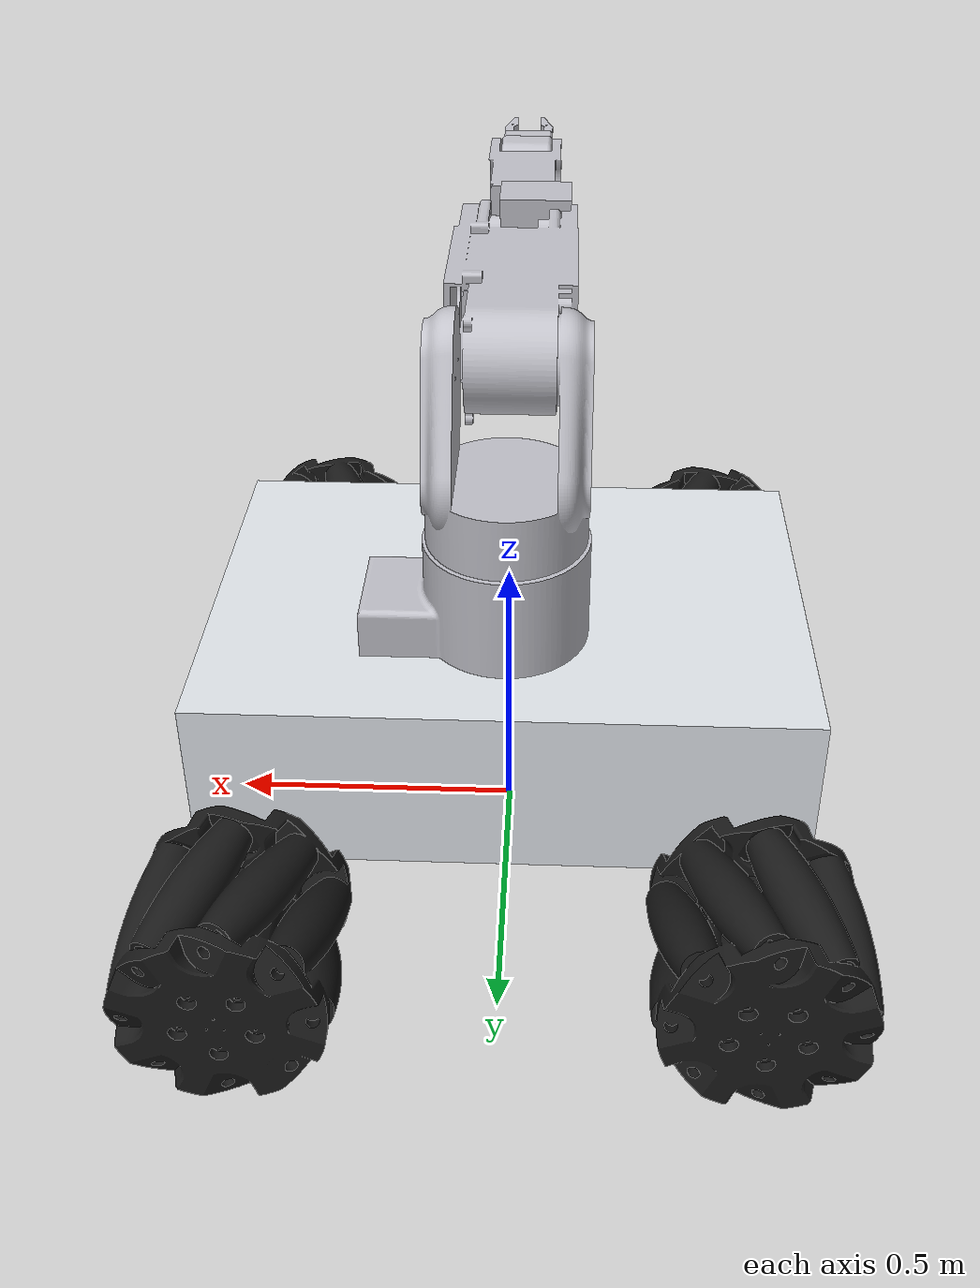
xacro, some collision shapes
<?xml version="1.0"?>
<robot xmlns:xacro="http://www.ros.org/wiki/xacro"
       xmlns:gz="http://gazebosim.org/schema"
       name="mobil_manipulator">

  <!-- Normal Gazebo/LLM profili yalnız native Gazebo arayüzünü kullanır.
       Reaktör 180'e ait özel kamera ancak o eski launch açıkça isterse eklenir. -->
  <xacro:arg name="enable_game_camera" default="false"/>

  <!-- ================= MECANUM BODY ================= -->

  <xacro:property name="body_length" value="1.0"/>
  <xacro:property name="body_width"  value="0.7"/>
  <xacro:property name="body_height" value="0.3"/>
  <xacro:property name="wheel_radius" value="0.1625"/>
  <xacro:property name="wheel_width"  value="0.09"/>
  <xacro:property name="wheel_scale" value="0.01"/>

  <xacro:property name="wheel_offset_x" value="${body_length/2 - 0.10}"/>
  <xacro:property name="wheel_offset_y" value="${body_width/2 + wheel_width +0.1}"/>

  <xacro:property name="body_mass"  value="80.0"/>
  <xacro:property name="wheel_mass" value="1.0"/>
  <xacro:property name="body_z" value="${wheel_radius + body_height/2}"/>

  <xacro:property name="wheel_mesh_right" value="file://$(find mecanum_robot_description)/meshes/mecanum_wheel_right.stl"/>
  <xacro:property name="wheel_mesh_left" value="file://$(find mecanum_robot_description)/meshes/mecanum_wheel_left.stl"/>
<!-- ================= S ROBOT ARM V2 ENTEGRASYONU ================= -->

  <xacro:include filename="$(find robot_arm_description)/urdf/robot_arm.xacro"/>

  <joint name="chassis_to_arm_joint" type="fixed">
    <parent link="base_link"/>
    <child link="arm_base_link"/>
    <origin xyz="0 0 ${body_z + (body_height/2)}" rpy="0 0 0"/>
  </joint>
  <!-- BASE -->
<link name="base_footprint"/>
  <joint name="base_joint" type="fixed">
    <parent link="base_footprint"/>
    <child link="base_link"/>
  </joint>

  <link name="base_link">
    <inertial>
      <origin xyz="0 0 -0.5" rpy="0 0 0"/>
      <mass value="${body_mass}"/>
      <inertia
        ixx="${(1.0/12.0) * body_mass * (body_width*body_width + body_height*body_height)}"
        iyy="${(1.0/12.0) * body_mass * (body_length*body_length + body_height*body_height)}"
        izz="${(1.0/12.0) * body_mass * (body_length*body_length + body_width*body_width)}"
        ixy="0.0" ixz="0.0" iyz="0.0"/>
    </inertial>

    <visual>
      <origin xyz="0 0 ${body_z}" rpy="0 0 0"/>
      <geometry>
        <box size="${body_length} ${body_width} ${body_height}"/>
      </geometry>
      <material name="clean_white">
        <color rgba="0.88 0.90 0.92 1"/>
      </material>
    </visual>

    <collision>
      <origin xyz="0 0 ${body_z}" rpy="0 0 0"/>
      <geometry>
        <box size="${body_length} ${body_width} ${body_height}"/>
      </geometry>
    </collision>
  </link>

  <!-- ================= MECANUM WHEELS ================= -->

  <xacro:macro name="mecanum_wheel" params="name parent x y z mesh fdir_x fdir_y">

    <link name="${name}">
      <inertial>
        <mass value="${wheel_mass}"/>
        <origin xyz="0 0 0" rpy="0 0 0"/>
        <inertia
          ixx="${(wheel_mass/12.0) * (3*wheel_radius*wheel_radius + wheel_width*wheel_width)}"
          iyy="${(wheel_mass/2.0) * wheel_radius*wheel_radius}"
          izz="${(wheel_mass/12.0) * (3*wheel_radius*wheel_radius + wheel_width*wheel_width)}"
          ixy="0" ixz="0" iyz="0"/>
      </inertial>
      <visual>
        <geometry>
          <mesh filename="${mesh}" scale="${wheel_scale} ${wheel_scale} ${wheel_scale}"/>
        </geometry>
        <material name="black"><color rgba="0.1 0.1 0.1 1"/></material>
      </visual>
      <collision>
        <origin xyz="0 0 0" rpy="0 0 0"/>
        <geometry>
          <sphere radius="${wheel_radius}"/>
        </geometry>
      </collision>
    </link>

    <joint name="${name}_joint" type="continuous">
      <parent link="${parent}"/>
      <child link="${name}"/>
      <origin xyz="${x} ${y} ${z}" rpy="0 0 0"/>
      <axis xyz="0 1 0"/>
    </joint>

    <gazebo reference="${name}">
      <collision>
        <surface>
          <friction>
            <ode>
              <mu>7.0</mu>
              <mu2>0.0</mu2>
              <fdir1 gz:expressed_in="base_footprint">${fdir_x} ${fdir_y} 0</fdir1>
            </ode>
          </friction>
        </surface>
      </collision>
    </gazebo>
  </xacro:macro>

  <!-- FL ve RR: fdir1 = (1, -1, 0)  |  FR ve RL: fdir1 = (1, 1, 0) -->

  <xacro:mecanum_wheel name="wheel_fl" parent="base_link"
    x="${wheel_offset_x}" y="${wheel_offset_y}" z="${wheel_radius}"
    mesh="${wheel_mesh_left}" fdir_x="1" fdir_y="-1"/>

  <xacro:mecanum_wheel name="wheel_fr" parent="base_link"
    x="${wheel_offset_x}" y="-${wheel_offset_y}" z="${wheel_radius}"
    mesh="${wheel_mesh_right}" fdir_x="1" fdir_y="1"/>

  <xacro:mecanum_wheel name="wheel_rl" parent="base_link"
    x="-${wheel_offset_x}" y="${wheel_offset_y}" z="${wheel_radius}"
    mesh="${wheel_mesh_right}" fdir_x="1" fdir_y="1"/>

  <xacro:mecanum_wheel name="wheel_rr" parent="base_link"
    x="-${wheel_offset_x}" y="-${wheel_offset_y}" z="${wheel_radius}"
    mesh="${wheel_mesh_left}" fdir_x="1" fdir_y="-1"/>

  <!-- ================= LIDAR ================= -->

  <xacro:property name="lidar_z" value="${body_z + body_height/2 + 0.02}"/>

  <joint name="lidar_joint" type="fixed">
    <parent link="base_link"/>
    <child link="lidar_link"/>
    <!-- X=0.45 (Aracın burnunda), Y=0.0 (Ortalanmış), Z=lidar_z (Aracın üstünde) -->
    <origin xyz="0.45 0.0 ${lidar_z}" rpy="0 0 0"/>
  </joint>

  <link name="lidar_link">
    <inertial>
      <mass value="0.2"/>
      <origin xyz="0 0 0" rpy="0 0 0"/>
      <inertia ixx="0.0001" iyy="0.0001" izz="0.0001" ixy="0" ixz="0" iyz="0"/>
    </inertial>
    <!-- Sensor-only link: hiding the old grey puck cleans the manipulator's
         working area without changing lidar data. -->
  </link>

  <xacro:if value="$(arg enable_game_camera)">
  <!-- ================= FESTIVAL 3D GAME CAMERA ================= -->

  <!-- The small nose camera remains part of the robot silhouette, but the
       festival game uses the shared chase camera below. -->
  <joint name="driver_camera_joint" type="fixed">
    <parent link="base_link"/>
    <child link="driver_camera_link"/>
    <origin xyz="0.43 0 ${body_z + 0.47}" rpy="0 0 0"/>
  </joint>
  <link name="driver_camera_link">
    <!-- Sensor frame retained for compatibility; the obsolete black nose
         camera housing is not part of the shared-camera game silhouette. -->
  </link>

  <joint name="arm_operator_camera_joint" type="fixed">
    <parent link="base_link"/>
    <child link="arm_operator_camera_link"/>
    <origin xyz="-2.68 -1.55 ${body_z + 1.65}" rpy="0 0.38 0.523599"/>
  </joint>
  <link name="arm_operator_camera_link"/>
  </xacro:if>

<gazebo>
  <plugin filename="libgz-sim-mecanum-drive-system.so"
          name="gz::sim::systems::MecanumDrive">
    <front_left_joint>wheel_fl_joint</front_left_joint>
    <front_right_joint>wheel_fr_joint</front_right_joint>
    <back_left_joint>wheel_rl_joint</back_left_joint>
    <back_right_joint>wheel_rr_joint</back_right_joint>
    <wheel_separation>1.08</wheel_separation>
    <wheelbase>0.80</wheelbase>
    <wheel_radius>0.1625</wheel_radius>

    <topic>/cmd_vel</topic>

    <odom_publish_frequency>30</odom_publish_frequency>
    <frame_id>odom</frame_id>
    <child_frame_id>base_footprint</child_frame_id>
    <odom_topic>/odom</odom_topic>
    <tf_topic>/tf</tf_topic>
  </plugin>
</gazebo>

<!-- Pearl-white visual finish for the mobile platform.  This section changes
     rendering only; the chassis geometry, mass and collision stay untouched. -->
<gazebo reference="base_link">
  <visual>
    <material>
      <ambient>0.46 0.48 0.50 1</ambient>
      <diffuse>0.88 0.90 0.92 1</diffuse>
      <specular>0.72 0.75 0.78 1</specular>
      <pbr><metal><metalness>0.28</metalness><roughness>0.34</roughness></metal></pbr>
    </material>
  </visual>
  <xacro:if value="$(arg enable_game_camera)">
    <self_collide>true</self_collide>
  </xacro:if>
  <xacro:unless value="$(arg enable_game_camera)">
    <self_collide>false</self_collide>
  </xacro:unless>
</gazebo>

<!-- ROS 2 Control Gazebo Plugin genel-->

<gazebo reference="lidar_link">
  <sensor name="lidar_sensor" type="gpu_lidar">
    <topic>/scan</topic>
    <update_rate>10</update_rate>
    <gz_frame_id>lidar_link</gz_frame_id>
    <pose>0 0 0 0 0 0</pose>
    <visualize>false</visualize>
    <!-- Nav2 and SLAM consume this scan in the native Gazebo arena.  Gazebo's
         hidden sensor render target remains active without adding an RViz or
         Reactor camera window. -->
    <always_on>true</always_on>
    <ray>
      <scan>
        <horizontal>
          <samples>360</samples>
          <resolution>1.0</resolution>
            <min_angle>-2.09</min_angle>
            <max_angle>2.09</max_angle>
        </horizontal>
      </scan>
      <range>
        <min>0.15</min>
        <max>12.0</max>
        <resolution>0.01</resolution>
      </range>
      <noise>
        <type>gaussian</type>
        <mean>0.0</mean>
        <stddev>0.01</stddev>
      </noise>
    </ray>
  </sensor>
</gazebo>

<xacro:if value="$(arg enable_game_camera)">
<gazebo reference="arm_operator_camera_link">
  <sensor name="shared_game_camera_sensor" type="camera">
    <topic>/reactor_180/game_camera</topic>
    <update_rate>20</update_rate>
    <camera>
      <horizontal_fov>1.95</horizontal_fov>
      <image>
        <width>1600</width>
        <height>900</height>
        <format>R8G8B8</format>
        <anti_aliasing>4</anti_aliasing>
      </image>
      <clip><near>0.12</near><far>28.0</far></clip>
    </camera>
    <always_on>true</always_on>
    <visualize>false</visualize>
  </sensor>
</gazebo>
</xacro:if>

</robot>

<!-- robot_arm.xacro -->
<robot name="robot_arm" xmlns:xacro="http://www.ros.org/wiki/xacro">

<xacro:arg name="use_ros2_control" default="true" />
<xacro:arg name="use_native_control" default="false" />
<xacro:arg name="enable_game_assets" default="false" />
<xacro:arg name="standalone_arm" default="false" />
<!-- Mobile arena only: spawn directly on the deterministic table-clearing
     MoveIt branch. Standalone/upstream profiles retain their ready pose. -->
<xacro:arg name="mobile_case_initial" default="false" />
<xacro:include filename="$(find robot_arm_description)/urdf/materials.xacro" />
<xacro:include filename="$(find robot_arm_description)/urdf/robot_arm.ros2control" />
<xacro:include filename="$(find robot_arm_description)/urdf/robot_arm.gazebo" />
<xacro:if value="$(arg standalone_arm)">
  <link name="world"/>
  <joint name="world_to_arm_base" type="fixed">
    <parent link="world"/>
    <child link="arm_base_link"/>
    <origin xyz="0 0 0" rpy="0 0 0"/>
  </joint>
</xacro:if>

<link name="arm_base_link">
  <inertial>
    <origin xyz="0.014712625665330324 0.1104030365171965 0.045126245432456004" rpy="0 0 0"/>
    <mass value="1.346391"/>
    <inertia ixx="0.015764883" iyy="0.019490568" izz="0.022143950" ixy="-0.000000000" iyz="-0.000000000" ixz="0.000497100"/>
  </inertial>
  <visual>
    <origin xyz="0 0 0" rpy="0 0 0"/>
    <geometry>
      <mesh filename="file://$(find robot_arm_description)/meshes/base_link.stl" scale="0.001 0.001 0.001"/>
    </geometry>
    <material name="silver"/>
  </visual>
  <collision>
    <origin xyz="0 0.11 0.09" rpy="0 0 0"/>
    <geometry><cylinder radius="0.16" length="0.18"/></geometry>
  </collision>
</link>

<link name="shoulder_link_v2_1">
  <inertial>
    <origin xyz="-0.00035045456964973747 -0.013538062073570417 0.10281772471825718" rpy="0 0 0"/>
    <mass value="1.306891"/>
    <inertia ixx="0.016597600" iyy="0.019874750" izz="0.013551083" ixy="-0.000025850" iyz="0.002596482" ixz="0.000078850"/>
  </inertial>
  <visual>
    <origin xyz="0.0 -0.110403 -0.184597" rpy="0 0 0"/>
    <geometry>
      <mesh filename="file://$(find robot_arm_description)/meshes/shoulder_link_v2_1.stl" scale="0.001 0.001 0.001"/>
    </geometry>
    <material name="silver"/>
  </visual>
  <collision>
    <origin xyz="-0.047 -0.035 0.135" rpy="0 0 0"/>
    <geometry><box size="0.22 0.20 0.24"/></geometry>
  </collision>
</link>

<link name="upper_arm_link_v2_1">
  <inertial>
    <origin xyz="0.0860771295035334 -0.19746164423610849 -1.0453582749314627e-05" rpy="0 0 0"/>
    <mass value="0.888269"/>
    <inertia ixx="0.030127082" iyy="0.005919182" izz="0.031455283" ixy="0.001406950" iyz="-0.000000968" ixz="0.000000918"/>
  </inertial>
  <visual>
    <origin xyz="0.095 -0.040403 -0.459597" rpy="0 0 0"/>
    <geometry>
      <mesh filename="file://$(find robot_arm_description)/meshes/upper_arm_link_v2_1.stl" scale="0.001 0.001 0.001"/>
    </geometry>
    <material name="silver"/>
  </visual>
  <collision>
    <origin xyz="0.020 -0.262 0" rpy="0 0 0"/>
    <geometry><box size="0.13 0.45 0.13"/></geometry>
  </collision>
</link>

<link name="elbow_link_v2_1">
  <inertial>
    <origin xyz="0.052902702338458216 -0.025659794753081833 -0.00021904281386853075" rpy="0 0 0"/>
    <mass value="0.119430"/>
    <inertia ixx="0.000407768" iyy="0.000297132" izz="0.000394317" ixy="0.000000367" iyz="-0.000000918" ixz="0.000000000"/>
  </inertial>
  <visual>
    <origin xyz="0.054 0.484597 -0.459597" rpy="0 0 0"/>
    <geometry>
      <mesh filename="file://$(find robot_arm_description)/meshes/elbow_link_v2_1.stl" scale="0.001 0.001 0.001"/>
    </geometry>
    <material name="silver"/>
  </visual>
  <collision>
    <origin xyz="0.026 -0.041 0" rpy="0 0 0"/>
    <geometry><box size="0.13 0.10 0.13"/></geometry>
  </collision>
</link>

<link name="lower_link_v2_1">
  <inertial>
    <origin xyz="3.585542470080057e-05 -0.14132389998535622 -4.115182214436963e-07" rpy="0 0 0"/>
    <mass value="0.230197"/>
    <inertia ixx="0.002054683" iyy="0.000702300" izz="0.002163800" ixy="-0.000011800" iyz="-0.000000018" ixz="-0.000000000"/>
  </inertial>
  <visual>
    <origin xyz="0.001 0.567597 -0.459597" rpy="0 0 0"/>
    <geometry>
      <mesh filename="file://$(find robot_arm_description)/meshes/lower_link_v2_1.stl" scale="0.001 0.001 0.001"/>
    </geometry>
    <material name="silver"/>
  </visual>
  <collision>
    <origin xyz="-0.026 -0.145 0" rpy="0 0 0"/>
    <geometry><box size="0.11 0.24 0.11"/></geometry>
  </collision>
</link>

<link name="wrist_link_v1_1">
  <inertial>
    <origin xyz="0.05107201270944397 -0.011906080047413892 0.00027679513001566125" rpy="0 0 0"/>
    <mass value="0.056296"/>
    <inertia ixx="0.000073483" iyy="0.000101617" izz="0.000108383" ixy="0.000000100" iyz="0.000000150" ixz="-0.000000000"/>
  </inertial>
  <visual>
    <origin xyz="0.053 0.858597 -0.459597" rpy="0 0 0"/>
    <geometry>
      <mesh filename="file://$(find robot_arm_description)/meshes/wrist_link_v1_1.stl" scale="0.001 0.001 0.001"/>
    </geometry>
    <material name="silver"/>
  </visual>
  <collision>
    <origin xyz="0.025 -0.025 0" rpy="0 0 0"/>
    <geometry><box size="0.11 0.08 0.09"/></geometry>
  </collision>
</link>

<link name="gripper_link_v2_1">
  <inertial>
    <origin xyz="-0.0010660299218875268 -0.04308680250375296 0.0009958827106185675" rpy="0 0 0"/>
    <mass value="0.024621"/>
    <inertia ixx="0.000017783" iyy="0.000027882" izz="0.000033467" ixy="0.000000018" iyz="0.000000133" ixz="-0.000000000"/>
  </inertial>
  <visual>
    <origin xyz="0.0018 0.909535 -0.460781" rpy="0 0 0"/>
    <geometry>
      <mesh filename="file://$(find robot_arm_description)/meshes/gripper_link_v2_1.stl" scale="0.001 0.001 0.001"/>
    </geometry>
    <material name="silver"/>
  </visual>
  <collision>
    <origin xyz="0 -0.0375 0.0045" rpy="0 0 0"/>
    <geometry>
      <box size="0.100 0.075 0.045"/>
    </geometry>
  </collision>
</link>

<link name="grasp_frame"/>
<joint name="gripper_to_grasp_frame" type="fixed">
  <parent link="gripper_link_v2_1"/>
  <child link="grasp_frame"/>
  <origin xyz="0 -0.124 0.005" rpy="0 0 0"/>
</joint>

<xacro:if value="$(arg enable_game_assets)">
<link name="held_core_visual_link">
  <inertial>
    <mass value="0.01"/>
    <origin xyz="0 0 0" rpy="0 0 0"/>
    <inertia ixx="0.00001" iyy="0.00001" izz="0.00001"
             ixy="0" ixz="0" iyz="0"/>
  </inertial>
  <visual name="held_energy_cell">
    <origin xyz="0 0 0" rpy="0 0 0"/>
    <geometry><box size="0.05 0.12 0.07"/></geometry>
    <material name="held_core_blue">
      <color rgba="0.04 0.78 1.0 1.0"/>
    </material>
  </visual>
</link>
<joint name="held_core_visibility_joint" type="prismatic">
  <parent link="grasp_frame"/>
  <child link="held_core_visual_link"/>
  <origin xyz="0 0 -1.5" rpy="0 0 0"/>
  <axis xyz="0 0 1"/>
  <limit lower="0.0" upper="1.6" effort="4" velocity="20.0"/>
  <dynamics damping="0.1" friction="0.0"/>
</joint>
</xacro:if>

<link name="jaw_one_v1_1">
  <inertial>
    <origin xyz="-0.01527629607958246 -0.036016115673927374 0.008044608205367287" rpy="0 0 0"/>
    <mass value="0.008454"/>
    <inertia ixx="0.000007550" iyy="0.000001732" izz="0.000007283" ixy="0.000000018" iyz="-0.000000367" ixz="0.000000200"/>
  </inertial>
  <visual>
    <origin xyz="-0.0482 0.997104 -0.458817" rpy="0 0 0"/>
    <geometry>
      <mesh filename="file://$(find robot_arm_description)/meshes/jaw_one_v1_1.stl" scale="0.001 0.001 0.001"/>
    </geometry>
    <material name="silver"/>
  </visual>
  <collision name="jaw_one_inner_contact_collision">
    <origin xyz="-0.023 -0.043 0.0065" rpy="0 0 0"/>
    <geometry><box size="0.006 0.070 0.042"/></geometry>
  </collision>
</link>

<link name="jaw_two_v1_1">
  <inertial>
    <origin xyz="0.015274559603405395 -0.03618933785615064 0.004635449770394873" rpy="0 0 0"/>
    <mass value="0.008454"/>
    <inertia ixx="0.000007550" iyy="0.000001867" izz="0.000007168" ixy="0.000000000" iyz="0.000000918" ixz="0.000000200"/>
  </inertial>
  <visual>
    <origin xyz="0.0518 0.997104 -0.458817" rpy="0 0 0"/>
    <geometry>
      <mesh filename="file://$(find robot_arm_description)/meshes/jaw_two_v1_1.stl" scale="0.001 0.001 0.001"/>
    </geometry>
    <material name="silver"/>
  </visual>
  <collision name="jaw_two_inner_contact_collision">
    <origin xyz="0.023 -0.043 0.0065" rpy="0 0 0"/>
    <geometry><box size="0.006 0.070 0.042"/></geometry>
  </collision>
</link>

<joint name="revolute_1" type="revolute">
  <origin xyz="0.0 0.110403 0.184597" rpy="0 0 0"/>
  <parent link="arm_base_link"/>
  <child link="shoulder_link_v2_1"/>
  <axis xyz="0.0 -0.0 1.0"/>
  <xacro:if value="$(arg use_native_control)">
    <limit lower="1.45" upper="1.69" effort="100" velocity="1.2"/>
  </xacro:if>
  <xacro:unless value="$(arg use_native_control)">
    <limit lower="-3.14159" upper="3.14159" effort="100" velocity="3.0"/>
  </xacro:unless>
  <dynamics damping="0.5" friction="0.0"/>
</joint>

<xacro:if value="$(arg use_native_control)">
  <joint name="revolute_2" type="continuous">
    <origin xyz="-0.095 -0.07 0.275" rpy="0 0 0"/>
    <parent link="shoulder_link_v2_1"/>
    <child link="upper_arm_link_v2_1"/>
    <axis xyz="1.0 -0.0 0.0"/>
    <!-- Festival control is continuous: contact with the chassis, arm or
         floor is the physical motion stop. -->
    <limit effort="180" velocity="1.4"/>
    <dynamics damping="0.5" friction="0.0"/>
  </joint>

  <joint name="revolute_3" type="continuous">
    <origin xyz="0.041 -0.525 0.0" rpy="0 0 0"/>
    <parent link="upper_arm_link_v2_1"/>
    <child link="elbow_link_v2_1"/>
    <axis xyz="1.0 -0.0 0.0"/>
    <limit effort="100" velocity="1.4"/>
    <dynamics damping="0.5" friction="0.0"/>
  </joint>
</xacro:if>

<xacro:unless value="$(arg use_native_control)">
  <!-- These definitions intentionally match the validated upstream MoveIt
       model.  They are bounded revolute joints, not the festival's continuous
       manual-control joints. -->
  <joint name="revolute_2" type="revolute">
    <origin xyz="-0.095 -0.07 0.275" rpy="0 0 0"/>
    <parent link="shoulder_link_v2_1"/>
    <child link="upper_arm_link_v2_1"/>
    <axis xyz="1.0 -0.0 0.0"/>
    <limit lower="-3.14159" upper="3.14159" effort="100" velocity="3.0"/>
    <dynamics damping="0.5" friction="0.0"/>
  </joint>

  <joint name="revolute_3" type="revolute">
    <origin xyz="0.041 -0.525 0.0" rpy="0 0 0"/>
    <parent link="upper_arm_link_v2_1"/>
    <child link="elbow_link_v2_1"/>
    <axis xyz="1.0 -0.0 0.0"/>
    <limit lower="-3.14159" upper="3.14159" effort="100" velocity="3.0"/>
    <dynamics damping="0.5" friction="0.0"/>
  </joint>
</xacro:unless>

<joint name="revolute_4" type="revolute">
  <origin xyz="0.053 -0.083 0.0" rpy="0 0 0"/>
  <parent link="elbow_link_v2_1"/>
  <child link="lower_link_v2_1"/>
  <axis xyz="-0.0 -1.0 -0.0"/>
  <xacro:if value="$(arg use_native_control)">
    <limit lower="-0.25" upper="0.25" effort="40" velocity="1.0"/>
  </xacro:if>
  <xacro:unless value="$(arg use_native_control)">
    <limit lower="-3.14159" upper="3.14159" effort="100" velocity="3.0"/>
  </xacro:unless>
  <dynamics damping="0.5" friction="0.0"/>
</joint>

<joint name="revolute_5" type="revolute">
  <origin xyz="-0.052 -0.291 0.0" rpy="0 0 0"/>
  <parent link="lower_link_v2_1"/>
  <child link="wrist_link_v1_1"/>
  <axis xyz="1.0 0.0 0.0"/>
  <xacro:if value="$(arg use_native_control)">
    <limit lower="-2.12" upper="-0.70" effort="40" velocity="1.2"/>
  </xacro:if>
  <xacro:unless value="$(arg use_native_control)">
    <limit lower="-3.14159" upper="3.14159" effort="100" velocity="3.0"/>
  </xacro:unless>
  <dynamics damping="0.5" friction="0.0"/>
</joint>

<joint name="revolute_6" type="revolute">
  <origin xyz="0.0512 -0.050938 0.001184" rpy="0 0 0"/>
  <parent link="wrist_link_v1_1"/>
  <child link="gripper_link_v2_1"/>
  <axis xyz="0.0 -0.99973 0.023249"/>
  <xacro:if value="$(arg use_native_control)">
    <limit lower="-1.15" upper="1.15" effort="30" velocity="1.2"/>
  </xacro:if>
  <xacro:unless value="$(arg use_native_control)">
    <limit lower="-3.30" upper="3.30" effort="100" velocity="3.0"/>
  </xacro:unless>
  <dynamics damping="0.5" friction="0.0"/>
</joint>

<joint name="slider_7" type="prismatic">
  <origin xyz="0.05 -0.087569 -0.001964" rpy="0 0 0"/>
  <parent link="gripper_link_v2_1"/>
  <child link="jaw_one_v1_1"/>
  <axis xyz="1.0 0.0 -0.0"/>
  <!-- Positive X moves jaw one outwards. -->
  <limit lower="-0.001" upper="0.055" effort="100" velocity="0.08"/>
  <dynamics damping="2.0" friction="0.02"/>
</joint>

<joint name="slider_8" type="prismatic">
  <origin xyz="-0.05 -0.087569 -0.001964" rpy="0 0 0"/>
  <parent link="gripper_link_v2_1"/>
  <child link="jaw_two_v1_1"/>
  <axis xyz="1.0 0.0 -0.0"/>
  <!-- Negative X moves jaw two outwards. -->
  <limit lower="-0.055" upper="0.001" effort="100" velocity="0.08"/>
  <dynamics damping="2.0" friction="0.02"/>
</joint>

</robot>
